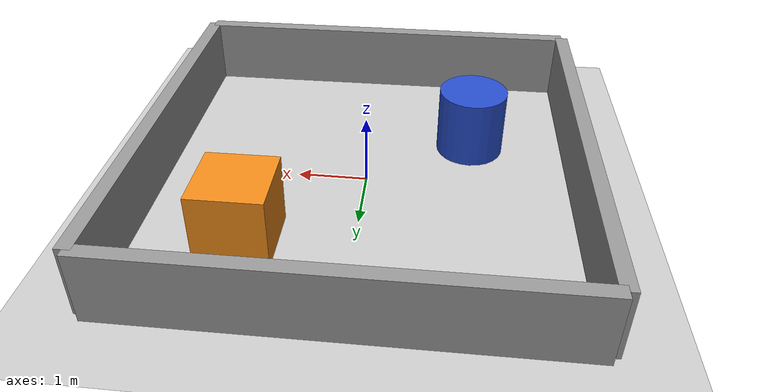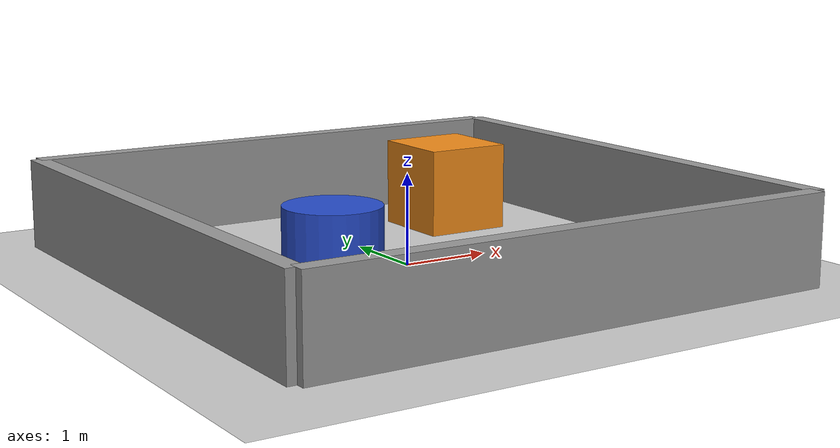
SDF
<?xml version="1.0" ?>
<sdf version="1.6">
  <world name="default">
    <physics type="ode">
      <max_step_size>0.001</max_step_size>
      <real_time_factor>1</real_time_factor>
      <real_time_update_rate>1000</real_time_update_rate>
    </physics>

    <include>
      <uri>model://sun</uri>
    </include>

    <include>
      <uri>model://ground_plane</uri>
    </include>

    <model name="wall_north">
      <pose>0 3 0.5 0 0 0</pose>
      <static>true</static>
      <link name="link">
        <collision name="collision">
          <geometry><box><size>6 0.2 1</size></box></geometry>
        </collision>
        <visual name="visual">
          <geometry><box><size>6 0.2 1</size></box></geometry>
          <material><script><uri>file://media/materials/scripts/gazebo.material</uri><name>Gazebo/Grey</name></script></material>
        </visual>
      </link>
    </model>

    <model name="wall_south">
      <pose>0 -3 0.5 0 0 0</pose>
      <static>true</static>
      <link name="link">
        <collision name="collision">
          <geometry><box><size>6 0.2 1</size></box></geometry>
        </collision>
        <visual name="visual">
          <geometry><box><size>6 0.2 1</size></box></geometry>
          <material><script><uri>file://media/materials/scripts/gazebo.material</uri><name>Gazebo/Grey</name></script></material>
        </visual>
      </link>
    </model>

    <model name="wall_east">
      <pose>3 0 0.5 0 0 0</pose>
      <static>true</static>
      <link name="link">
        <collision name="collision">
          <geometry><box><size>0.2 6 1</size></box></geometry>
        </collision>
        <visual name="visual">
          <geometry><box><size>0.2 6 1</size></box></geometry>
          <material><script><uri>file://media/materials/scripts/gazebo.material</uri><name>Gazebo/Grey</name></script></material>
        </visual>
      </link>
    </model>

    <model name="wall_west">
      <pose>-3 0 0.5 0 0 0</pose>
      <static>true</static>
      <link name="link">
        <collision name="collision">
          <geometry><box><size>0.2 6 1</size></box></geometry>
        </collision>
        <visual name="visual">
          <geometry><box><size>0.2 6 1</size></box></geometry>
          <material><script><uri>file://media/materials/scripts/gazebo.material</uri><name>Gazebo/Grey</name></script></material>
        </visual>
      </link>
    </model>

    <model name="obstacle_box">
      <pose>1.5 1.5 0.5 0 0 0</pose>
      <static>true</static>
      <link name="link">
        <collision name="collision">
          <geometry><box><size>1 1 1</size></box></geometry>
        </collision>
        <visual name="visual">
          <geometry><box><size>1 1 1</size></box></geometry>
          <material><script><uri>file://media/materials/scripts/gazebo.material</uri><name>Gazebo/Orange</name></script></material>
        </visual>
      </link>
    </model>

    <model name="obstacle_cylinder">
      <pose>-1.5 -1.0 0.5 0 0 0</pose>
      <static>true</static>
      <link name="link">
        <collision name="collision">
          <geometry><cylinder><radius>0.5</radius><length>1</length></cylinder></geometry>
        </collision>
        <visual name="visual">
          <geometry><cylinder><radius>0.5</radius><length>1</length></cylinder></geometry>
          <material><script><uri>file://media/materials/scripts/gazebo.material</uri><name>Gazebo/Blue</name></script></material>
        </visual>
      </link>
    </model>

  </world>
</sdf>
